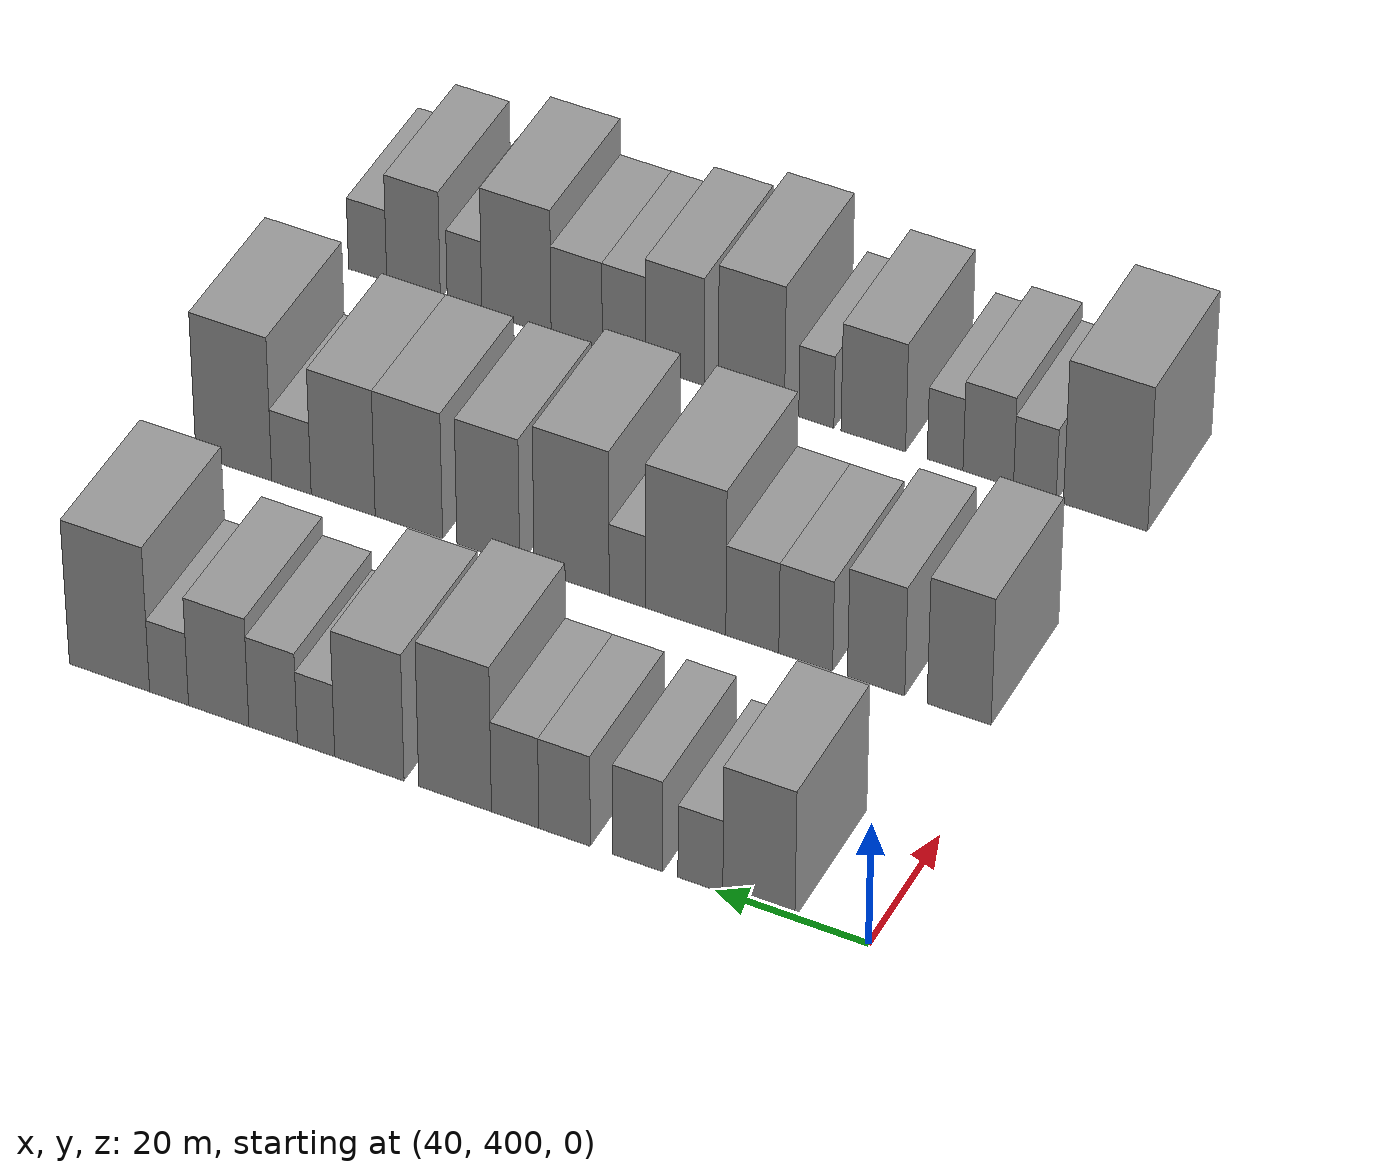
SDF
<sdf version="1.6">
 <world name="default">
  <model name="building_118">
   <static>1</static>
   <pose>50.0000 414.4103 0 0.000000 0.000000 0.000000</pose>
   <link name="link">
    <pose>0 0 10.50 0 0 0</pose>
    <collision name="collision"><geometry><box><size>20.0000 9.4782 21.0000</size></box></geometry></collision>
    <visual name="visual">
     <cast_shadows>0</cast_shadows>
     <geometry><box><size>20.0000 9.4782 21.0000</size></box></geometry>
     <material>
      <script>
       <uri>model://grey_wall/materials/scripts</uri>
       <uri>model://grey_wall/materials/textures</uri>
       <name>vrc/grey_wall</name>
      </script>
     </material>
    </visual>
   </link>
  </model>
  <model name="building_119">
   <static>1</static>
   <pose>50.0000 422.1133 0 0.000000 0.000000 0.000000</pose>
   <link name="link">
    <pose>0 0 6.00 0 0 0</pose>
    <collision name="collision"><geometry><box><size>20.0000 5.9277 12.0000</size></box></geometry></collision>
    <visual name="visual">
     <cast_shadows>0</cast_shadows>
     <geometry><box><size>20.0000 5.9277 12.0000</size></box></geometry>
     <material>
      <script>
       <uri>model://grey_wall/materials/scripts</uri>
       <uri>model://grey_wall/materials/textures</uri>
       <name>vrc/grey_wall</name>
      </script>
     </material>
    </visual>
   </link>
  </model>
  <model name="building_120">
   <static>1</static>
   <pose>50.0000 430.4025 0 0.000000 0.000000 0.000000</pose>
   <link name="link">
    <pose>0 0 7.50 0 0 0</pose>
    <collision name="collision"><geometry><box><size>20.0000 6.6508 15.0000</size></box></geometry></collision>
    <visual name="visual">
     <cast_shadows>0</cast_shadows>
     <geometry><box><size>20.0000 6.6508 15.0000</size></box></geometry>
     <material>
      <script>
       <uri>model://grey_wall/materials/scripts</uri>
       <uri>model://grey_wall/materials/textures</uri>
       <name>vrc/grey_wall</name>
      </script>
     </material>
    </visual>
   </link>
  </model>
  <model name="building_121">
   <static>1</static>
   <pose>50.0000 440.1727 0 0.000000 0.000000 0.000000</pose>
   <link name="link">
    <pose>0 0 7.50 0 0 0</pose>
    <collision name="collision"><geometry><box><size>20.0000 6.8895 15.0000</size></box></geometry></collision>
    <visual name="visual">
     <cast_shadows>0</cast_shadows>
     <geometry><box><size>20.0000 6.8895 15.0000</size></box></geometry>
     <material>
      <script>
       <uri>model://grey_wall/materials/scripts</uri>
       <uri>model://grey_wall/materials/textures</uri>
       <name>vrc/grey_wall</name>
      </script>
     </material>
    </visual>
   </link>
  </model>
  <model name="building_122">
   <static>1</static>
   <pose>50.0000 446.7971 0 0.000000 0.000000 0.000000</pose>
   <link name="link">
    <pose>0 0 7.50 0 0 0</pose>
    <collision name="collision"><geometry><box><size>20.0000 6.3591 15.0000</size></box></geometry></collision>
    <visual name="visual">
     <cast_shadows>0</cast_shadows>
     <geometry><box><size>20.0000 6.3591 15.0000</size></box></geometry>
     <material>
      <script>
       <uri>model://grey_wall/materials/scripts</uri>
       <uri>model://grey_wall/materials/textures</uri>
       <name>vrc/grey_wall</name>
      </script>
     </material>
    </visual>
   </link>
  </model>
  <model name="building_123">
   <static>1</static>
   <pose>50.0000 454.8843 0 0.000000 0.000000 0.000000</pose>
   <link name="link">
    <pose>0 0 12.00 0 0 0</pose>
    <collision name="collision"><geometry><box><size>20.0000 9.8154 24.0000</size></box></geometry></collision>
    <visual name="visual">
     <cast_shadows>0</cast_shadows>
     <geometry><box><size>20.0000 9.8154 24.0000</size></box></geometry>
     <material>
      <script>
       <uri>model://grey_wall/materials/scripts</uri>
       <uri>model://grey_wall/materials/textures</uri>
       <name>vrc/grey_wall</name>
      </script>
     </material>
    </visual>
   </link>
  </model>
  <model name="building_124">
   <static>1</static>
   <pose>50.0000 466.5108 0 0.000000 0.000000 0.000000</pose>
   <link name="link">
    <pose>0 0 10.50 0 0 0</pose>
    <collision name="collision"><geometry><box><size>20.0000 9.4374 21.0000</size></box></geometry></collision>
    <visual name="visual">
     <cast_shadows>0</cast_shadows>
     <geometry><box><size>20.0000 9.4374 21.0000</size></box></geometry>
     <material>
      <script>
       <uri>model://grey_wall/materials/scripts</uri>
       <uri>model://grey_wall/materials/textures</uri>
       <name>vrc/grey_wall</name>
      </script>
     </material>
    </visual>
   </link>
  </model>
  <model name="building_125">
   <static>1</static>
   <pose>50.0000 473.7779 0 0.000000 0.000000 0.000000</pose>
   <link name="link">
    <pose>0 0 6.00 0 0 0</pose>
    <collision name="collision"><geometry><box><size>20.0000 5.0968 12.0000</size></box></geometry></collision>
    <visual name="visual">
     <cast_shadows>0</cast_shadows>
     <geometry><box><size>20.0000 5.0968 12.0000</size></box></geometry>
     <material>
      <script>
       <uri>model://grey_wall/materials/scripts</uri>
       <uri>model://grey_wall/materials/textures</uri>
       <name>vrc/grey_wall</name>
      </script>
     </material>
    </visual>
   </link>
  </model>
  <model name="building_126">
   <static>1</static>
   <pose>50.0000 479.6608 0 0.000000 0.000000 0.000000</pose>
   <link name="link">
    <pose>0 0 7.50 0 0 0</pose>
    <collision name="collision"><geometry><box><size>20.0000 6.6692 15.0000</size></box></geometry></collision>
    <visual name="visual">
     <cast_shadows>0</cast_shadows>
     <geometry><box><size>20.0000 6.6692 15.0000</size></box></geometry>
     <material>
      <script>
       <uri>model://grey_wall/materials/scripts</uri>
       <uri>model://grey_wall/materials/textures</uri>
       <name>vrc/grey_wall</name>
      </script>
     </material>
    </visual>
   </link>
  </model>
  <model name="building_127">
   <static>1</static>
   <pose>50.0000 487.1593 0 0.000000 0.000000 0.000000</pose>
   <link name="link">
    <pose>0 0 9.00 0 0 0</pose>
    <collision name="collision"><geometry><box><size>20.0000 8.3279 18.0000</size></box></geometry></collision>
    <visual name="visual">
     <cast_shadows>0</cast_shadows>
     <geometry><box><size>20.0000 8.3279 18.0000</size></box></geometry>
     <material>
      <script>
       <uri>model://grey_wall/materials/scripts</uri>
       <uri>model://grey_wall/materials/textures</uri>
       <name>vrc/grey_wall</name>
      </script>
     </material>
    </visual>
   </link>
  </model>
  <model name="building_128">
   <static>1</static>
   <pose>50.0000 494.0206 0 0.000000 0.000000 0.000000</pose>
   <link name="link">
    <pose>0 0 6.00 0 0 0</pose>
    <collision name="collision"><geometry><box><size>20.0000 5.3946 12.0000</size></box></geometry></collision>
    <visual name="visual">
     <cast_shadows>0</cast_shadows>
     <geometry><box><size>20.0000 5.3946 12.0000</size></box></geometry>
     <material>
      <script>
       <uri>model://grey_wall/materials/scripts</uri>
       <uri>model://grey_wall/materials/textures</uri>
       <name>vrc/grey_wall</name>
      </script>
     </material>
    </visual>
   </link>
  </model>
  <model name="building_129">
   <static>1</static>
   <pose>50.0000 502.2996 0 0.000000 0.000000 0.000000</pose>
   <link name="link">
    <pose>0 0 12.00 0 0 0</pose>
    <collision name="collision"><geometry><box><size>20.0000 11.1634 24.0000</size></box></geometry></collision>
    <visual name="visual">
     <cast_shadows>0</cast_shadows>
     <geometry><box><size>20.0000 11.1634 24.0000</size></box></geometry>
     <material>
      <script>
       <uri>model://grey_wall/materials/scripts</uri>
       <uri>model://grey_wall/materials/textures</uri>
       <name>vrc/grey_wall</name>
      </script>
     </material>
    </visual>
   </link>
  </model>
  <model name="building_257">
   <static>1</static>
   <pose>90.0000 406.6495 0 0.000000 0.000000 0.000000</pose>
   <link name="link">
    <pose>0 0 10.50 0 0 0</pose>
    <collision name="collision"><geometry><box><size>20.0000 8.5481 21.0000</size></box></geometry></collision>
    <visual name="visual">
     <cast_shadows>0</cast_shadows>
     <geometry><box><size>20.0000 8.5481 21.0000</size></box></geometry>
     <material>
      <script>
       <uri>model://grey_wall/materials/scripts</uri>
       <uri>model://grey_wall/materials/textures</uri>
       <name>vrc/grey_wall</name>
      </script>
     </material>
    </visual>
   </link>
  </model>
  <model name="building_258">
   <static>1</static>
   <pose>90.0000 417.7794 0 0.000000 0.000000 0.000000</pose>
   <link name="link">
    <pose>0 0 9.00 0 0 0</pose>
    <collision name="collision"><geometry><box><size>20.0000 7.7115 18.0000</size></box></geometry></collision>
    <visual name="visual">
     <cast_shadows>0</cast_shadows>
     <geometry><box><size>20.0000 7.7115 18.0000</size></box></geometry>
     <material>
      <script>
       <uri>model://grey_wall/materials/scripts</uri>
       <uri>model://grey_wall/materials/textures</uri>
       <name>vrc/grey_wall</name>
      </script>
     </material>
    </visual>
   </link>
  </model>
  <model name="building_259">
   <static>1</static>
   <pose>90.0000 427.2750 0 0.000000 0.000000 0.000000</pose>
   <link name="link">
    <pose>0 0 7.50 0 0 0</pose>
    <collision name="collision"><geometry><box><size>20.0000 7.2798 15.0000</size></box></geometry></collision>
    <visual name="visual">
     <cast_shadows>0</cast_shadows>
     <geometry><box><size>20.0000 7.2798 15.0000</size></box></geometry>
     <material>
      <script>
       <uri>model://grey_wall/materials/scripts</uri>
       <uri>model://grey_wall/materials/textures</uri>
       <name>vrc/grey_wall</name>
      </script>
     </material>
    </visual>
   </link>
  </model>
  <model name="building_260">
   <static>1</static>
   <pose>90.0000 434.5173 0 0.000000 0.000000 0.000000</pose>
   <link name="link">
    <pose>0 0 7.50 0 0 0</pose>
    <collision name="collision"><geometry><box><size>20.0000 7.2048 15.0000</size></box></geometry></collision>
    <visual name="visual">
     <cast_shadows>0</cast_shadows>
     <geometry><box><size>20.0000 7.2048 15.0000</size></box></geometry>
     <material>
      <script>
       <uri>model://grey_wall/materials/scripts</uri>
       <uri>model://grey_wall/materials/textures</uri>
       <name>vrc/grey_wall</name>
      </script>
     </material>
    </visual>
   </link>
  </model>
  <model name="building_261">
   <static>1</static>
   <pose>90.0000 443.6315 0 0.000000 0.000000 0.000000</pose>
   <link name="link">
    <pose>0 0 12.00 0 0 0</pose>
    <collision name="collision"><geometry><box><size>20.0000 11.0235 24.0000</size></box></geometry></collision>
    <visual name="visual">
     <cast_shadows>0</cast_shadows>
     <geometry><box><size>20.0000 11.0235 24.0000</size></box></geometry>
     <material>
      <script>
       <uri>model://grey_wall/materials/scripts</uri>
       <uri>model://grey_wall/materials/textures</uri>
       <name>vrc/grey_wall</name>
      </script>
     </material>
    </visual>
   </link>
  </model>
  <model name="building_262">
   <static>1</static>
   <pose>90.0000 451.6220 0 0.000000 0.000000 0.000000</pose>
   <link name="link">
    <pose>0 0 6.00 0 0 0</pose>
    <collision name="collision"><geometry><box><size>20.0000 4.9575 12.0000</size></box></geometry></collision>
    <visual name="visual">
     <cast_shadows>0</cast_shadows>
     <geometry><box><size>20.0000 4.9575 12.0000</size></box></geometry>
     <material>
      <script>
       <uri>model://grey_wall/materials/scripts</uri>
       <uri>model://grey_wall/materials/textures</uri>
       <name>vrc/grey_wall</name>
      </script>
     </material>
    </visual>
   </link>
  </model>
  <model name="building_263">
   <static>1</static>
   <pose>90.0000 459.2839 0 0.000000 0.000000 0.000000</pose>
   <link name="link">
    <pose>0 0 12.00 0 0 0</pose>
    <collision name="collision"><geometry><box><size>20.0000 10.3664 24.0000</size></box></geometry></collision>
    <visual name="visual">
     <cast_shadows>0</cast_shadows>
     <geometry><box><size>20.0000 10.3664 24.0000</size></box></geometry>
     <material>
      <script>
       <uri>model://grey_wall/materials/scripts</uri>
       <uri>model://grey_wall/materials/textures</uri>
       <name>vrc/grey_wall</name>
      </script>
     </material>
    </visual>
   </link>
  </model>
  <model name="building_264">
   <static>1</static>
   <pose>90.0000 470.8343 0 0.000000 0.000000 0.000000</pose>
   <link name="link">
    <pose>0 0 10.50 0 0 0</pose>
    <collision name="collision"><geometry><box><size>20.0000 8.7343 21.0000</size></box></geometry></collision>
    <visual name="visual">
     <cast_shadows>0</cast_shadows>
     <geometry><box><size>20.0000 8.7343 21.0000</size></box></geometry>
     <material>
      <script>
       <uri>model://grey_wall/materials/scripts</uri>
       <uri>model://grey_wall/materials/textures</uri>
       <name>vrc/grey_wall</name>
      </script>
     </material>
    </visual>
   </link>
  </model>
  <model name="building_265">
   <static>1</static>
   <pose>90.0000 481.9332 0 0.000000 0.000000 0.000000</pose>
   <link name="link">
    <pose>0 0 10.50 0 0 0</pose>
    <collision name="collision"><geometry><box><size>20.0000 9.4636 21.0000</size></box></geometry></collision>
    <visual name="visual">
     <cast_shadows>0</cast_shadows>
     <geometry><box><size>20.0000 9.4636 21.0000</size></box></geometry>
     <material>
      <script>
       <uri>model://grey_wall/materials/scripts</uri>
       <uri>model://grey_wall/materials/textures</uri>
       <name>vrc/grey_wall</name>
      </script>
     </material>
    </visual>
   </link>
  </model>
  <model name="building_266">
   <static>1</static>
   <pose>90.0000 491.1801 0 0.000000 0.000000 0.000000</pose>
   <link name="link">
    <pose>0 0 10.50 0 0 0</pose>
    <collision name="collision"><geometry><box><size>20.0000 9.0303 21.0000</size></box></geometry></collision>
    <visual name="visual">
     <cast_shadows>0</cast_shadows>
     <geometry><box><size>20.0000 9.0303 21.0000</size></box></geometry>
     <material>
      <script>
       <uri>model://grey_wall/materials/scripts</uri>
       <uri>model://grey_wall/materials/textures</uri>
       <name>vrc/grey_wall</name>
      </script>
     </material>
    </visual>
   </link>
  </model>
  <model name="building_267">
   <static>1</static>
   <pose>90.0000 498.4771 0 0.000000 0.000000 0.000000</pose>
   <link name="link">
    <pose>0 0 6.00 0 0 0</pose>
    <collision name="collision"><geometry><box><size>20.0000 5.5636 12.0000</size></box></geometry></collision>
    <visual name="visual">
     <cast_shadows>0</cast_shadows>
     <geometry><box><size>20.0000 5.5636 12.0000</size></box></geometry>
     <material>
      <script>
       <uri>model://grey_wall/materials/scripts</uri>
       <uri>model://grey_wall/materials/textures</uri>
       <name>vrc/grey_wall</name>
      </script>
     </material>
    </visual>
   </link>
  </model>
  <model name="building_268">
   <static>1</static>
   <pose>90.0000 506.6653 0 0.000000 0.000000 0.000000</pose>
   <link name="link">
    <pose>0 0 12.00 0 0 0</pose>
    <collision name="collision"><geometry><box><size>20.0000 10.8128 24.0000</size></box></geometry></collision>
    <visual name="visual">
     <cast_shadows>0</cast_shadows>
     <geometry><box><size>20.0000 10.8128 24.0000</size></box></geometry>
     <material>
      <script>
       <uri>model://grey_wall/materials/scripts</uri>
       <uri>model://grey_wall/materials/textures</uri>
       <name>vrc/grey_wall</name>
      </script>
     </material>
    </visual>
   </link>
  </model>
  <model name="building_397">
   <static>1</static>
   <pose>130.0000 404.9335 0 0.000000 0.000000 0.000000</pose>
   <link name="link">
    <pose>0 0 12.00 0 0 0</pose>
    <collision name="collision"><geometry><box><size>20.0000 11.4736 24.0000</size></box></geometry></collision>
    <visual name="visual">
     <cast_shadows>0</cast_shadows>
     <geometry><box><size>20.0000 11.4736 24.0000</size></box></geometry>
     <material>
      <script>
       <uri>model://grey_wall/materials/scripts</uri>
       <uri>model://grey_wall/materials/textures</uri>
       <name>vrc/grey_wall</name>
      </script>
     </material>
    </visual>
   </link>
  </model>
  <model name="building_398">
   <static>1</static>
   <pose>130.0000 414.5922 0 0.000000 0.000000 0.000000</pose>
   <link name="link">
    <pose>0 0 6.00 0 0 0</pose>
    <collision name="collision"><geometry><box><size>20.0000 5.8438 12.0000</size></box></geometry></collision>
    <visual name="visual">
     <cast_shadows>0</cast_shadows>
     <geometry><box><size>20.0000 5.8438 12.0000</size></box></geometry>
     <material>
      <script>
       <uri>model://grey_wall/materials/scripts</uri>
       <uri>model://grey_wall/materials/textures</uri>
       <name>vrc/grey_wall</name>
      </script>
     </material>
    </visual>
   </link>
  </model>
  <model name="building_399">
   <static>1</static>
   <pose>130.0000 420.9865 0 0.000000 0.000000 0.000000</pose>
   <link name="link">
    <pose>0 0 7.50 0 0 0</pose>
    <collision name="collision"><geometry><box><size>20.0000 6.9448 15.0000</size></box></geometry></collision>
    <visual name="visual">
     <cast_shadows>0</cast_shadows>
     <geometry><box><size>20.0000 6.9448 15.0000</size></box></geometry>
     <material>
      <script>
       <uri>model://grey_wall/materials/scripts</uri>
       <uri>model://grey_wall/materials/textures</uri>
       <name>vrc/grey_wall</name>
      </script>
     </material>
    </visual>
   </link>
  </model>
  <model name="building_400">
   <static>1</static>
   <pose>130.0000 426.9281 0 0.000000 0.000000 0.000000</pose>
   <link name="link">
    <pose>0 0 6.00 0 0 0</pose>
    <collision name="collision"><geometry><box><size>20.0000 4.9386 12.0000</size></box></geometry></collision>
    <visual name="visual">
     <cast_shadows>0</cast_shadows>
     <geometry><box><size>20.0000 4.9386 12.0000</size></box></geometry>
     <material>
      <script>
       <uri>model://grey_wall/materials/scripts</uri>
       <uri>model://grey_wall/materials/textures</uri>
       <name>vrc/grey_wall</name>
      </script>
     </material>
    </visual>
   </link>
  </model>
  <model name="building_401">
   <static>1</static>
   <pose>130.0000 436.8785 0 0.000000 0.000000 0.000000</pose>
   <link name="link">
    <pose>0 0 9.00 0 0 0</pose>
    <collision name="collision"><geometry><box><size>20.0000 8.9621 18.0000</size></box></geometry></collision>
    <visual name="visual">
     <cast_shadows>0</cast_shadows>
     <geometry><box><size>20.0000 8.9621 18.0000</size></box></geometry>
     <material>
      <script>
       <uri>model://grey_wall/materials/scripts</uri>
       <uri>model://grey_wall/materials/textures</uri>
       <name>vrc/grey_wall</name>
      </script>
     </material>
    </visual>
   </link>
  </model>
  <model name="building_402">
   <static>1</static>
   <pose>130.0000 444.8085 0 0.000000 0.000000 0.000000</pose>
   <link name="link">
    <pose>0 0 6.00 0 0 0</pose>
    <collision name="collision"><geometry><box><size>20.0000 4.8980 12.0000</size></box></geometry></collision>
    <visual name="visual">
     <cast_shadows>0</cast_shadows>
     <geometry><box><size>20.0000 4.8980 12.0000</size></box></geometry>
     <material>
      <script>
       <uri>model://grey_wall/materials/scripts</uri>
       <uri>model://grey_wall/materials/textures</uri>
       <name>vrc/grey_wall</name>
      </script>
     </material>
    </visual>
   </link>
  </model>
  <model name="building_403">
   <static>1</static>
   <pose>130.0000 453.9089 0 0.000000 0.000000 0.000000</pose>
   <link name="link">
    <pose>0 0 10.50 0 0 0</pose>
    <collision name="collision"><geometry><box><size>20.0000 9.3029 21.0000</size></box></geometry></collision>
    <visual name="visual">
     <cast_shadows>0</cast_shadows>
     <geometry><box><size>20.0000 9.3029 21.0000</size></box></geometry>
     <material>
      <script>
       <uri>model://grey_wall/materials/scripts</uri>
       <uri>model://grey_wall/materials/textures</uri>
       <name>vrc/grey_wall</name>
      </script>
     </material>
    </visual>
   </link>
  </model>
  <model name="building_404">
   <static>1</static>
   <pose>130.0000 464.7253 0 0.000000 0.000000 0.000000</pose>
   <link name="link">
    <pose>0 0 9.00 0 0 0</pose>
    <collision name="collision"><geometry><box><size>20.0000 8.3300 18.0000</size></box></geometry></collision>
    <visual name="visual">
     <cast_shadows>0</cast_shadows>
     <geometry><box><size>20.0000 8.3300 18.0000</size></box></geometry>
     <material>
      <script>
       <uri>model://grey_wall/materials/scripts</uri>
       <uri>model://grey_wall/materials/textures</uri>
       <name>vrc/grey_wall</name>
      </script>
     </material>
    </visual>
   </link>
  </model>
  <model name="building_405">
   <static>1</static>
   <pose>130.0000 471.9332 0 0.000000 0.000000 0.000000</pose>
   <link name="link">
    <pose>0 0 7.50 0 0 0</pose>
    <collision name="collision"><geometry><box><size>20.0000 6.0857 15.0000</size></box></geometry></collision>
    <visual name="visual">
     <cast_shadows>0</cast_shadows>
     <geometry><box><size>20.0000 6.0857 15.0000</size></box></geometry>
     <material>
      <script>
       <uri>model://grey_wall/materials/scripts</uri>
       <uri>model://grey_wall/materials/textures</uri>
       <name>vrc/grey_wall</name>
      </script>
     </material>
    </visual>
   </link>
  </model>
  <model name="building_406">
   <static>1</static>
   <pose>130.0000 478.6214 0 0.000000 0.000000 0.000000</pose>
   <link name="link">
    <pose>0 0 7.50 0 0 0</pose>
    <collision name="collision"><geometry><box><size>20.0000 7.2906 15.0000</size></box></geometry></collision>
    <visual name="visual">
     <cast_shadows>0</cast_shadows>
     <geometry><box><size>20.0000 7.2906 15.0000</size></box></geometry>
     <material>
      <script>
       <uri>model://grey_wall/materials/scripts</uri>
       <uri>model://grey_wall/materials/textures</uri>
       <name>vrc/grey_wall</name>
      </script>
     </material>
    </visual>
   </link>
  </model>
  <model name="building_407">
   <static>1</static>
   <pose>130.0000 487.2363 0 0.000000 0.000000 0.000000</pose>
   <link name="link">
    <pose>0 0 10.50 0 0 0</pose>
    <collision name="collision"><geometry><box><size>20.0000 9.9392 21.0000</size></box></geometry></collision>
    <visual name="visual">
     <cast_shadows>0</cast_shadows>
     <geometry><box><size>20.0000 9.9392 21.0000</size></box></geometry>
     <material>
      <script>
       <uri>model://grey_wall/materials/scripts</uri>
       <uri>model://grey_wall/materials/textures</uri>
       <name>vrc/grey_wall</name>
      </script>
     </material>
    </visual>
   </link>
  </model>
  <model name="building_408">
   <static>1</static>
   <pose>130.0000 494.6942 0 0.000000 0.000000 0.000000</pose>
   <link name="link">
    <pose>0 0 6.00 0 0 0</pose>
    <collision name="collision"><geometry><box><size>20.0000 4.9765 12.0000</size></box></geometry></collision>
    <visual name="visual">
     <cast_shadows>0</cast_shadows>
     <geometry><box><size>20.0000 4.9765 12.0000</size></box></geometry>
     <material>
      <script>
       <uri>model://grey_wall/materials/scripts</uri>
       <uri>model://grey_wall/materials/textures</uri>
       <name>vrc/grey_wall</name>
      </script>
     </material>
    </visual>
   </link>
  </model>
  <model name="building_409">
   <static>1</static>
   <pose>130.0000 502.0569 0 0.000000 0.000000 0.000000</pose>
   <link name="link">
    <pose>0 0 9.00 0 0 0</pose>
    <collision name="collision"><geometry><box><size>20.0000 7.7490 18.0000</size></box></geometry></collision>
    <visual name="visual">
     <cast_shadows>0</cast_shadows>
     <geometry><box><size>20.0000 7.7490 18.0000</size></box></geometry>
     <material>
      <script>
       <uri>model://grey_wall/materials/scripts</uri>
       <uri>model://grey_wall/materials/textures</uri>
       <name>vrc/grey_wall</name>
      </script>
     </material>
    </visual>
   </link>
  </model>
  <model name="building_410">
   <static>1</static>
   <pose>130.0000 508.7043 0 0.000000 0.000000 0.000000</pose>
   <link name="link">
    <pose>0 0 6.00 0 0 0</pose>
    <collision name="collision"><geometry><box><size>20.0000 5.5459 12.0000</size></box></geometry></collision>
    <visual name="visual">
     <cast_shadows>0</cast_shadows>
     <geometry><box><size>20.0000 5.5459 12.0000</size></box></geometry>
     <material>
      <script>
       <uri>model://grey_wall/materials/scripts</uri>
       <uri>model://grey_wall/materials/textures</uri>
       <name>vrc/grey_wall</name>
      </script>
     </material>
    </visual>
   </link>
  </model>
 </world>
</sdf>
